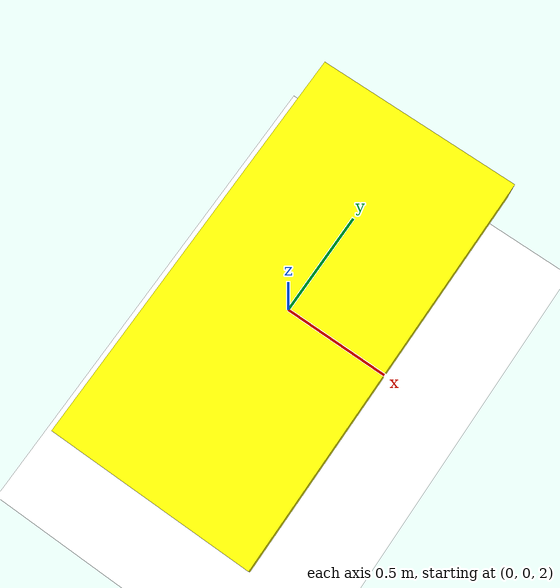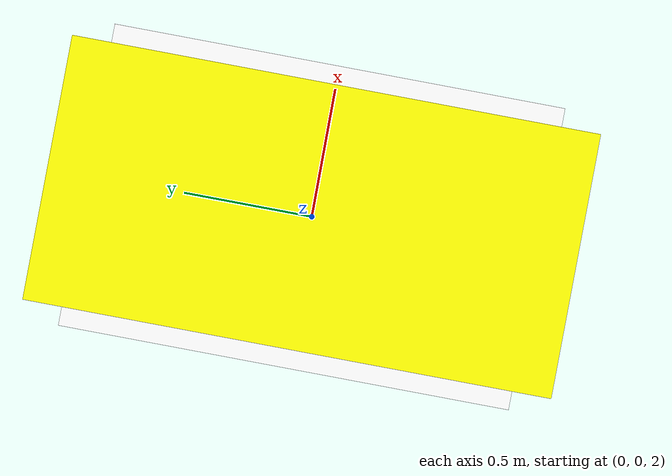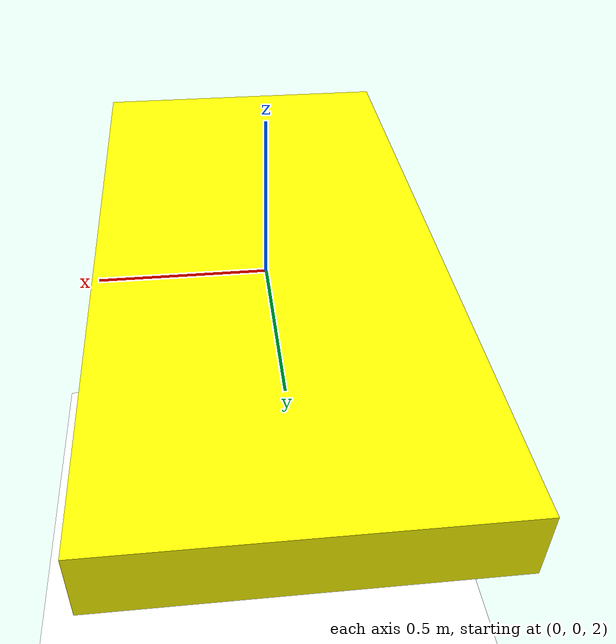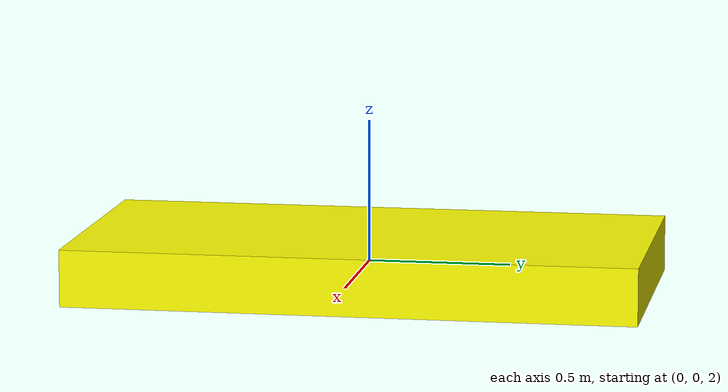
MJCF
<mujoco model="box">
    <visual>
        <headlight ambient=".4 .4 .4" diffuse=".5 .5 .5" specular="0.1 0.1 0.1"/>
        <map znear=".01"/>
        <quality shadowsize="2048"/>
      </visual>
    <asset>
        <texture
            name="plane" type="2d" builtin="checker" rgb1=".2 .3 .4" rgb2=".1 0.15 0.2" width="512"
            height="512" mark="cross" markrgb=".8 .8 .8" />

        <material name="plane" reflectance="0.3"
            texture="plane" texrepeat="1 1" texuniform="true" />
    </asset>
    <size njmax="500" nconmax="100" nuserdata="1" />
    <worldbody>
        <geom name="floor" size="0 0 .05" type="plane" rgba="1 1 1 1" material="plane" condim="3" />
        <body name="ikdummy" mocap="true" pos="0 0 2">
            <geom conaffinity="0" contype="0" pos="0 0 0" rgba="1.0 1.0 0.0 1.0" size="0.5 1 0.1"
                type="box"></geom>
        </body>
    </worldbody>
</mujoco>
